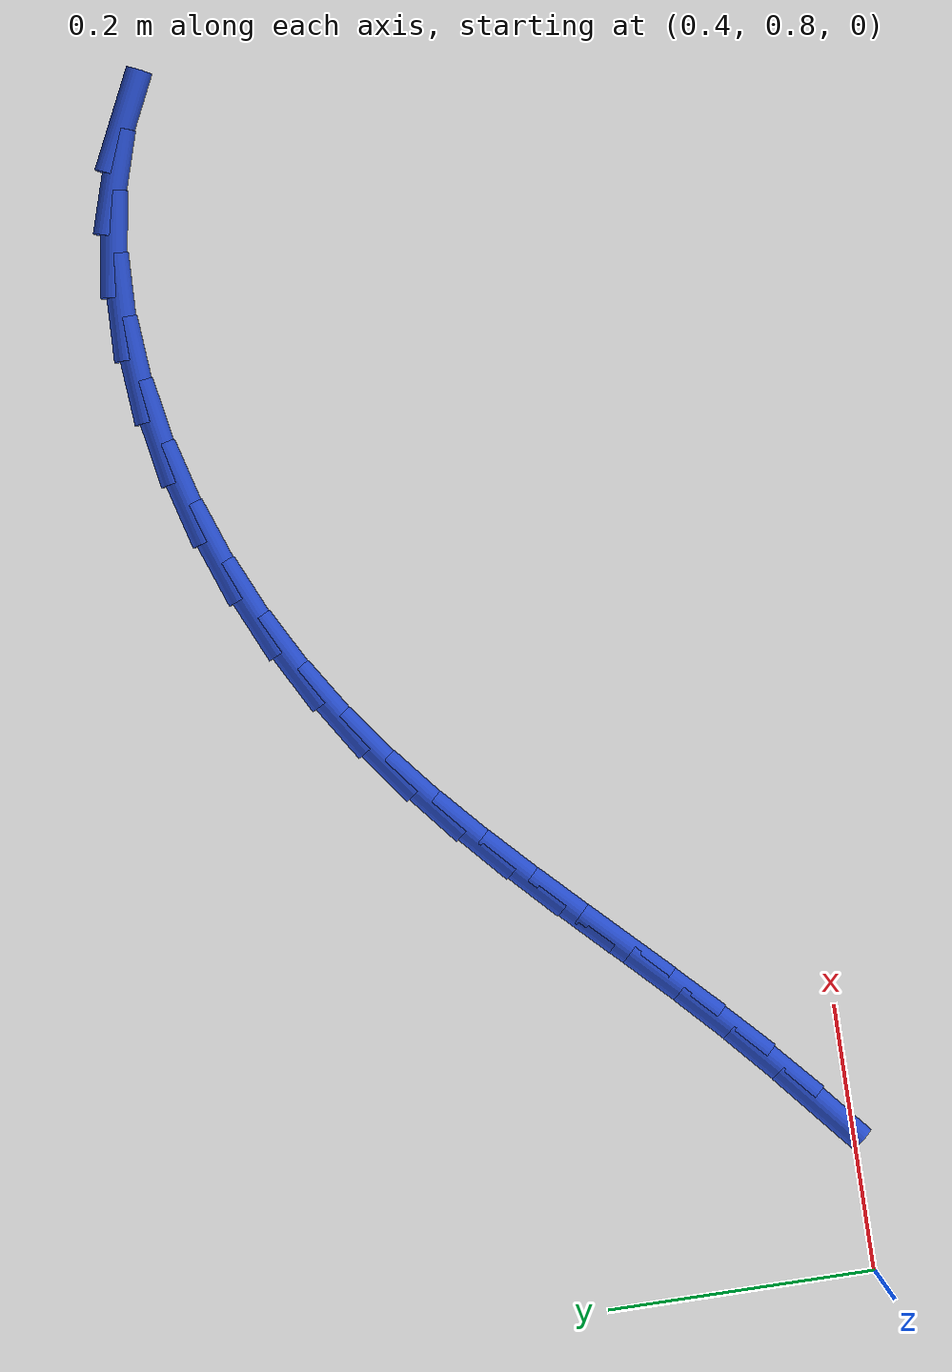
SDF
<sdf version="1.6">
 <world name="default">
  <model name="ground_plane">
   <static>1</static>
   <link name="link">
    <collision name="collision">
     <geometry><plane><normal>0 0 1</normal><size>100 100</size></plane></geometry>
     <surface><friction><ode><mu>100</mu><mu2>50</mu2></ode></friction></surface>
    </collision>
    <visual name="visual">
     <cast_shadows>0</cast_shadows>
     <geometry><plane><normal>0 0 1</normal><size>100 100</size></plane></geometry>
     <material>
      <script><uri>file://media/materials/scripts/gazebo.material</uri><name>Gazebo/WhiteGlow</name></script>
     </material>
    </visual>
   </link>
  </model>
  <model name="line">
   <link name="link_22">
    <pose>0.5293503190181407 0.8211046164563471 0.01 0 1.57 0.7051842614717638</pose>
    <collision name="collision">
     <geometry><cylinder><radius>0.01</radius><length>0.08</length></cylinder></geometry>
    </collision>
    <visual name="visual">
     <material>
      <script><name>Gazebo/Blue</name><uri>file://media/materials/scripts/gazebo.material</uri></script>
     </material>
     <geometry><cylinder><radius>0.01</radius><length>0.08</length></cylinder></geometry>
    </visual>
   </link>
   <link name="link_23">
    <pose>0.5654621740582942 0.8518426505596842 0.01 0 1.57 0.734805967708609</pose>
    <collision name="collision">
     <geometry><cylinder><radius>0.01</radius><length>0.08</length></cylinder></geometry>
    </collision>
    <visual name="visual">
     <material>
      <script><name>Gazebo/Blue</name><uri>file://media/materials/scripts/gazebo.material</uri></script>
     </material>
     <geometry><cylinder><radius>0.01</radius><length>0.08</length></cylinder></geometry>
    </visual>
   </link>
   <link name="link_24">
    <pose>0.6003863924385744 0.8834005214454815 0.01 0 1.57 0.7656476291308478</pose>
    <collision name="collision">
     <geometry><cylinder><radius>0.01</radius><length>0.08</length></cylinder></geometry>
    </collision>
    <visual name="visual">
     <material>
      <script><name>Gazebo/Blue</name><uri>file://media/materials/scripts/gazebo.material</uri></script>
     </material>
     <geometry><cylinder><radius>0.01</radius><length>0.08</length></cylinder></geometry>
    </visual>
   </link>
   <link name="link_25">
    <pose>0.6340758300660155 0.915784798201178 0.01 0 1.57 0.7854069243086584</pose>
    <collision name="collision">
     <geometry><cylinder><radius>0.01</radius><length>0.08</length></cylinder></geometry>
    </collision>
    <visual name="visual">
     <material>
      <script><name>Gazebo/Blue</name><uri>file://media/materials/scripts/gazebo.material</uri></script>
     </material>
     <geometry><cylinder><radius>0.01</radius><length>0.08</length></cylinder></geometry>
    </visual>
   </link>
   <link name="link_26">
    <pose>0.666946325942634 0.948655870033834 0.01 0 1.57 0.7924869824892709</pose>
    <collision name="collision">
     <geometry><cylinder><radius>0.01</radius><length>0.08</length></cylinder></geometry>
    </collision>
    <visual name="visual">
     <material>
      <script><name>Gazebo/Blue</name><uri>file://media/materials/scripts/gazebo.material</uri></script>
     </material>
     <geometry><cylinder><radius>0.01</radius><length>0.08</length></cylinder></geometry>
    </visual>
   </link>
   <link name="link_27">
    <pose>0.6994632412606615 0.9816370976151919 0.01 0 1.57 0.7867150209191134</pose>
    <collision name="collision">
     <geometry><cylinder><radius>0.01</radius><length>0.08</length></cylinder></geometry>
    </collision>
    <visual name="visual">
     <material>
      <script><name>Gazebo/Blue</name><uri>file://media/materials/scripts/gazebo.material</uri></script>
     </material>
     <geometry><cylinder><radius>0.01</radius><length>0.08</length></cylinder></geometry>
    </visual>
   </link>
   <link name="link_28">
    <pose>0.7320919372123287 1.0143518416169923 0.01 0 1.57 0.768024592440862</pose>
    <collision name="collision">
     <geometry><cylinder><radius>0.01</radius><length>0.08</length></cylinder></geometry>
    </collision>
    <visual name="visual">
     <material>
      <script><name>Gazebo/Blue</name><uri>file://media/materials/scripts/gazebo.material</uri></script>
     </material>
     <geometry><cylinder><radius>0.01</radius><length>0.08</length></cylinder></geometry>
    </visual>
   </link>
   <link name="link_29">
    <pose>0.765297774989867 1.046423462710977 0.01 0 1.57 0.7364866359164092</pose>
    <collision name="collision">
     <geometry><cylinder><radius>0.01</radius><length>0.08</length></cylinder></geometry>
    </collision>
    <visual name="visual">
     <material>
      <script><name>Gazebo/Blue</name><uri>file://media/materials/scripts/gazebo.material</uri></script>
     </material>
     <geometry><cylinder><radius>0.01</radius><length>0.08</length></cylinder></geometry>
    </visual>
   </link>
   <link name="link_30">
    <pose>0.7995461157855076 1.0774753215688873 0.01 0 1.57 0.6924002227723915</pose>
    <collision name="collision">
     <geometry><cylinder><radius>0.01</radius><length>0.08</length></cylinder></geometry>
    </collision>
    <visual name="visual">
     <material>
      <script><name>Gazebo/Blue</name><uri>file://media/materials/scripts/gazebo.material</uri></script>
     </material>
     <geometry><cylinder><radius>0.01</radius><length>0.08</length></cylinder></geometry>
    </visual>
   </link>
   <link name="link_31">
    <pose>0.835302320791482 1.1071307788624642 0.01 0 1.57 0.636430155390488</pose>
    <collision name="collision">
     <geometry><cylinder><radius>0.01</radius><length>0.08</length></cylinder></geometry>
    </collision>
    <visual name="visual">
     <material>
      <script><name>Gazebo/Blue</name><uri>file://media/materials/scripts/gazebo.material</uri></script>
     </material>
     <geometry><cylinder><radius>0.01</radius><length>0.08</length></cylinder></geometry>
    </visual>
   </link>
   <link name="link_32">
    <pose>0.8730317512000214 1.13501319526345 0.01 0 1.57 0.5697586324176485</pose>
    <collision name="collision">
     <geometry><cylinder><radius>0.01</radius><length>0.08</length></cylinder></geometry>
    </collision>
    <visual name="visual">
     <material>
      <script><name>Gazebo/Blue</name><uri>file://media/materials/scripts/gazebo.material</uri></script>
     </material>
     <geometry><cylinder><radius>0.01</radius><length>0.08</length></cylinder></geometry>
    </visual>
   </link>
   <link name="link_33">
    <pose>0.9131997276270933 1.1607459286052477 0.01 0 1.57 0.4960123316242508</pose>
    <collision name="collision">
     <geometry><cylinder><radius>0.01</radius><length>0.08</length></cylinder></geometry>
    </collision>
    <visual name="visual">
     <material>
      <script><name>Gazebo/Blue</name><uri>file://media/materials/scripts/gazebo.material</uri></script>
     </material>
     <geometry><cylinder><radius>0.01</radius><length>0.08</length></cylinder></geometry>
    </visual>
   </link>
   <link name="link_34">
    <pose>0.9560565505196716 1.1839372959159922 0.01 0 1.57 0.42142639953195427</pose>
    <collision name="collision">
     <geometry><cylinder><radius>0.01</radius><length>0.08</length></cylinder></geometry>
    </collision>
    <visual name="visual">
     <material>
      <script><name>Gazebo/Blue</name><uri>file://media/materials/scripts/gazebo.material</uri></script>
     </material>
     <geometry><cylinder><radius>0.01</radius><length>0.08</length></cylinder></geometry>
    </visual>
   </link>
   <link name="link_35">
    <pose>1.0011354152099636 1.2041454522392867 0.01 0 1.57 0.3449131976924875</pose>
    <collision name="collision">
     <geometry><cylinder><radius>0.01</radius><length>0.08</length></cylinder></geometry>
    </collision>
    <visual name="visual">
     <material>
      <script><name>Gazebo/Blue</name><uri>file://media/materials/scripts/gazebo.material</uri></script>
     </material>
     <geometry><cylinder><radius>0.01</radius><length>0.08</length></cylinder></geometry>
    </visual>
   </link>
   <link name="link_36">
    <pose>1.0478202046586 1.2209181081180367 0.01 0 1.57 0.2639605904391192</pose>
    <collision name="collision">
     <geometry><cylinder><radius>0.01</radius><length>0.08</length></cylinder></geometry>
    </collision>
    <visual name="visual">
     <material>
      <script><name>Gazebo/Blue</name><uri>file://media/materials/scripts/gazebo.material</uri></script>
     </material>
     <geometry><cylinder><radius>0.01</radius><length>0.08</length></cylinder></geometry>
    </visual>
   </link>
   <link name="link_37">
    <pose>1.0954948018262092 1.2338029740951473 0.01 0 1.57 0.17599750182136695</pose>
    <collision name="collision">
     <geometry><cylinder><radius>0.01</radius><length>0.08</length></cylinder></geometry>
    </collision>
    <visual name="visual">
     <material>
      <script><name>Gazebo/Blue</name><uri>file://media/materials/scripts/gazebo.material</uri></script>
     </material>
     <geometry><cylinder><radius>0.01</radius><length>0.08</length></cylinder></geometry>
    </visual>
   </link>
   <link name="link_38">
    <pose>1.143543089673421 1.2423477607135238 0.01 0 1.57 0.07833223116335455</pose>
    <collision name="collision">
     <geometry><cylinder><radius>0.01</radius><length>0.08</length></cylinder></geometry>
    </collision>
    <visual name="visual">
     <material>
      <script><name>Gazebo/Blue</name><uri>file://media/materials/scripts/gazebo.material</uri></script>
     </material>
     <geometry><cylinder><radius>0.01</radius><length>0.08</length></cylinder></geometry>
    </visual>
   </link>
   <link name="link_39">
    <pose>1.1913489511608648 1.24610017851607 0.01 0 1.57 -0.031774727334678725</pose>
    <collision name="collision">
     <geometry><cylinder><radius>0.01</radius><length>0.08</length></cylinder></geometry>
    </collision>
    <visual name="visual">
     <material>
      <script><name>Gazebo/Blue</name><uri>file://media/materials/scripts/gazebo.material</uri></script>
     </material>
     <geometry><cylinder><radius>0.01</radius><length>0.08</length></cylinder></geometry>
    </visual>
   </link>
   <link name="link_40">
    <pose>1.2382962692491697 1.2446079380456914 0.01 0 1.57 -0.1568013047305751</pose>
    <collision name="collision">
     <geometry><cylinder><radius>0.01</radius><length>0.08</length></cylinder></geometry>
    </collision>
    <visual name="visual">
     <material>
      <script><name>Gazebo/Blue</name><uri>file://media/materials/scripts/gazebo.material</uri></script>
     </material>
     <geometry><cylinder><radius>0.01</radius><length>0.08</length></cylinder></geometry>
    </visual>
   </link>
   <link name="link_41">
    <pose>1.283768926898966 1.237418749845293 0.01 0 1.57 -0.29829159822095574</pose>
    <collision name="collision">
     <geometry><cylinder><radius>0.01</radius><length>0.08</length></cylinder></geometry>
    </collision>
    <visual name="visual">
     <material>
      <script><name>Gazebo/Blue</name><uri>file://media/materials/scripts/gazebo.material</uri></script>
     </material>
     <geometry><cylinder><radius>0.01</radius><length>0.08</length></cylinder></geometry>
    </visual>
   </link>
   <link name="link_42">
    <pose>1.3271508070708824 1.2240803244577803 0.01 0 1.57 -0.4475374454338112</pose>
    <collision name="collision">
     <geometry><cylinder><radius>0.01</radius><length>0.08</length></cylinder></geometry>
    </collision>
    <visual name="visual">
     <material>
      <script><name>Gazebo/Blue</name><uri>file://media/materials/scripts/gazebo.material</uri></script>
     </material>
     <geometry><cylinder><radius>0.01</radius><length>0.08</length></cylinder></geometry>
    </visual>
   </link>
  </model>
 </world>
</sdf>
